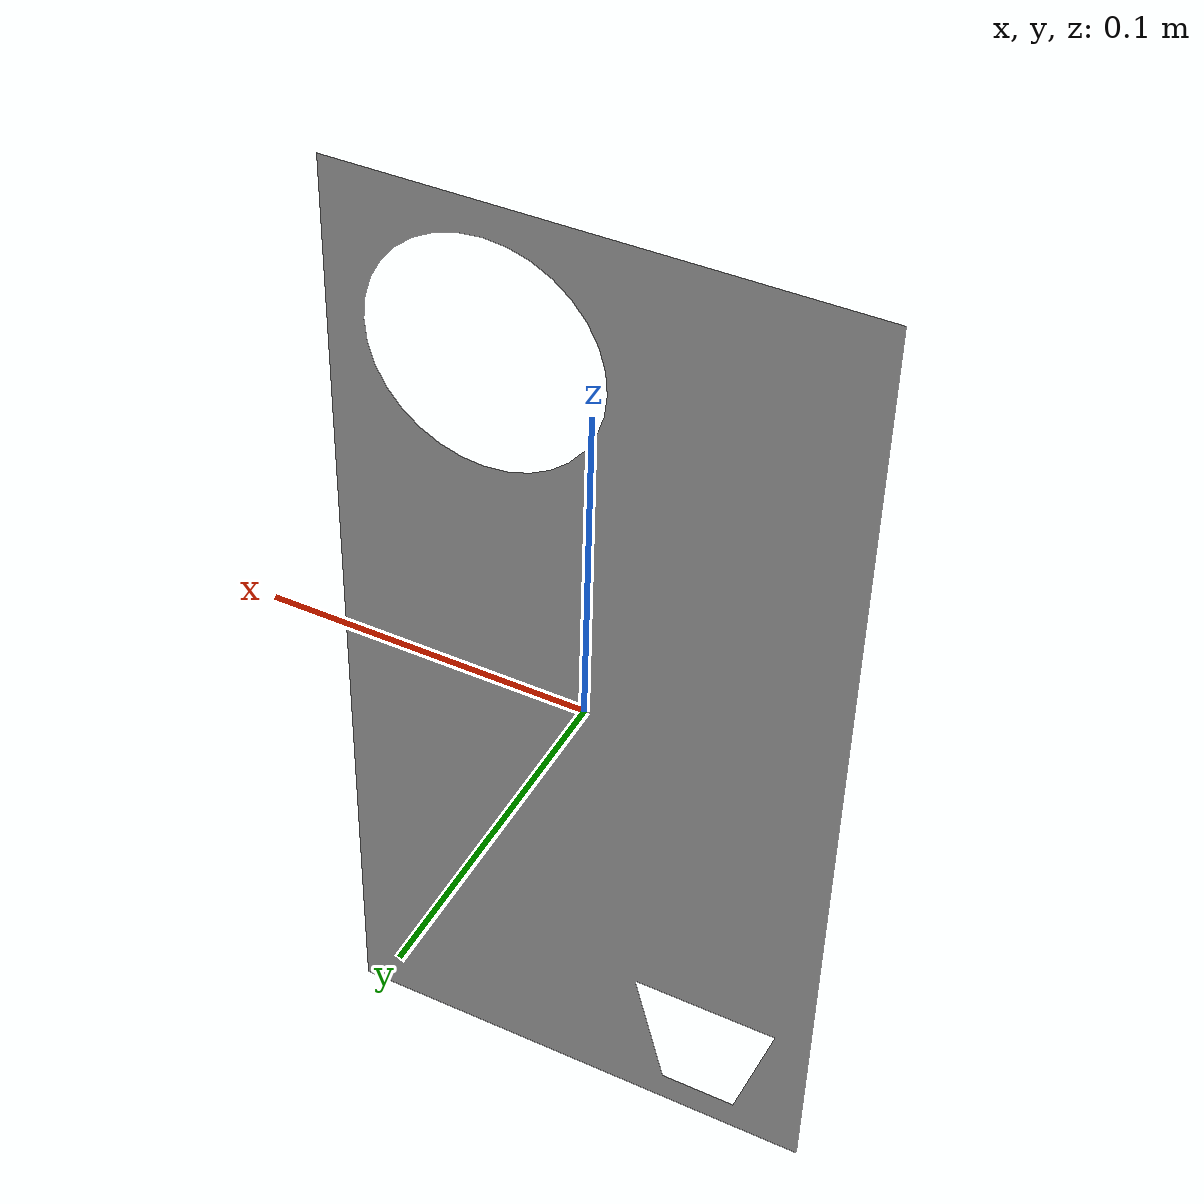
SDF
<?xml version="1.0" ?>
<sdf version="1.4">
  <model name="bootlegger_torpedo">
    <static>true</static>
    <link name="link">
      <pose>0 0 0 0 0 0</pose>
      <must_be_base_link>1</must_be_base_link>
      <collision name="collision">
        <geometry>
          <mesh>
            <uri>model://bootlegger_torpedo/meshes/bootleggerTorpedoCutout.dae</uri>
          </mesh>
        </geometry>
      </collision>
      <visual name="visual">
        <cast_shadows>false</cast_shadows>
        <geometry>
          <mesh>
            <uri>model://bootlegger_torpedo/meshes/bootleggerTorpedoCutout.dae</uri>
          </mesh>
        </geometry>
      </visual>
    </link>
  </model>
</sdf>
